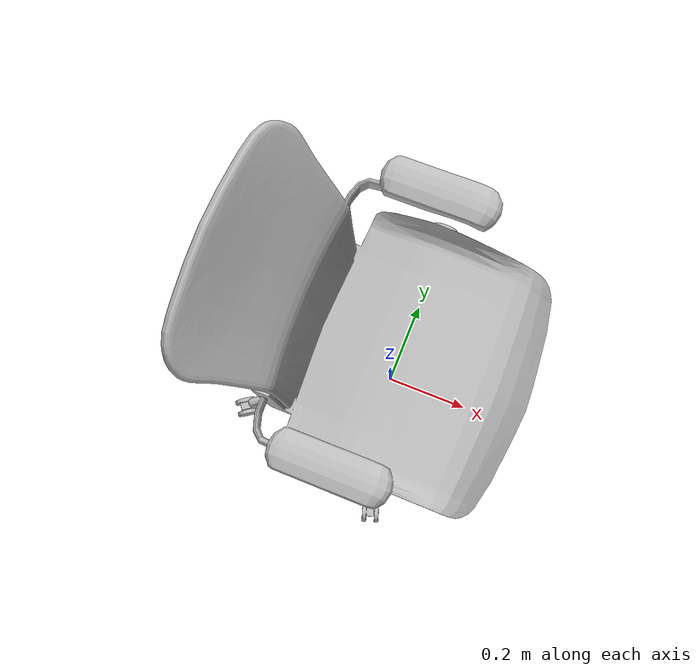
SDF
<?xml version='1.0'?>
<sdf version='1.4'>
  <model name='516'>
    <pose>0 0 0 0 0 0</pose>
    <static>true</static>
    <link name='link'>
      <collision name='collision'>
        <pose>0 0 0 0 0 0</pose>
        <geometry>
          <box>
            <size>0.680392 0.718166 2</size>
          </box>
        </geometry>
      </collision>
      <visual name='visual'>
        <pose>0 0 0 0 0 0</pose>
        <geometry>
          <mesh><uri>model://516/516.dae</uri></mesh>
        </geometry>
      </visual>
    </link>
  </model>
</sdf>
